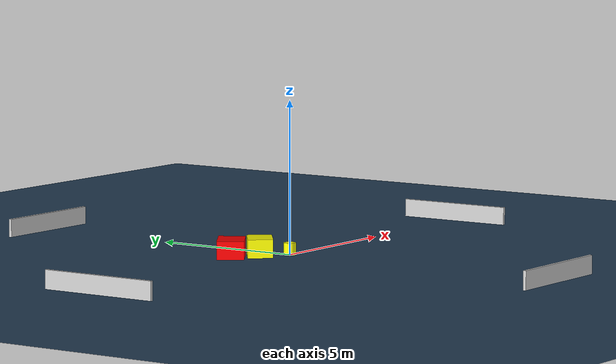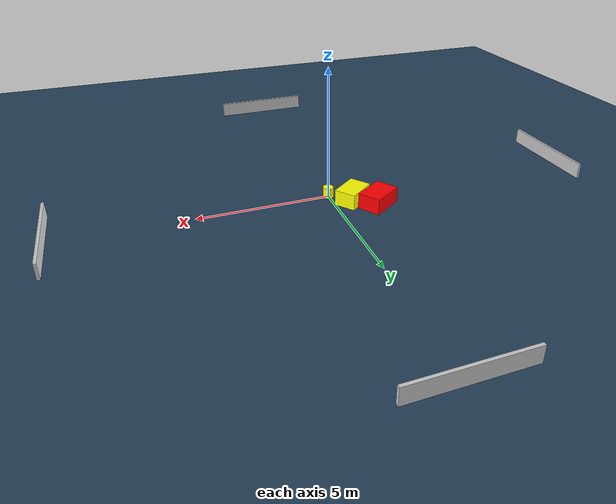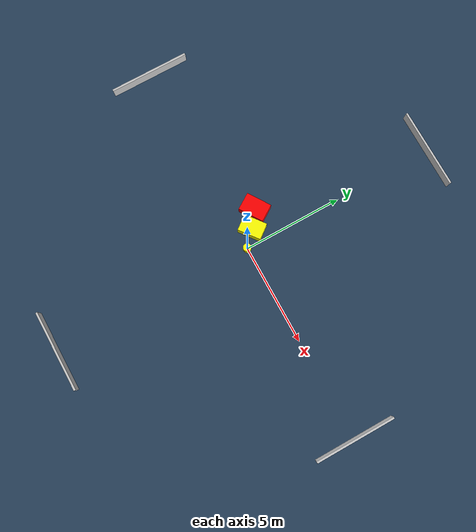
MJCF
<?xml version="1.0" ?>
<mujoco model="generated_environment">
  <option timestep="0.01" integrator="RK4" cone="elliptic"/>
  <default>
    <geom density="1"/>
  </default>
  <asset>
    <texture builtin="gradient" height="3072" name="skybox" rgb1="0.3 0.5 0.7" rgb2="0 0 0" type="skybox" width="512"/>
    <texture builtin="checker" height="300" name="groundplane" rgb1="0.2 0.3 0.4" rgb2="0.1 0.2 0.3" type="2d" width="300"/>
    <material name="groundplane" reflectance="0.2" texrepeat="5 5" texture="groundplane"/>
  </asset>
  <worldbody>
    <light dir="0 0 -1" directional="true" pos="0 0 1.5"/>
    <geom condim="3" friction="0.5 0.005 0.001" material="groundplane" name="floor" pos="0 0 0" size="0 0 0.05" type="plane"/>
    <body name="walls">
      <geom name="wall_1" condim="4" pos="-10.0 0.0 0.3" rgba="0.800000011920929 0.800000011920929 0.800000011920929 1.0" size="0.05 2.0 0.3" type="box"/>
      <geom name="wall_2" condim="4" pos="10.0 0.0 0.3" rgba="0.800000011920929 0.800000011920929 0.800000011920929 1.0" size="0.05 2.0 0.3" type="box"/>
      <geom name="wall_3" condim="4" pos="0.0 -10.0 0.3" rgba="0.800000011920929 0.800000011920929 0.800000011920929 1.0" size="2.0 0.05 0.3" type="box"/>
      <geom name="wall_4" condim="4" pos="0.0 10.0 0.3" rgba="0.800000011920929 0.800000011920929 0.800000011920929 1.0" size="2.0 0.05 0.3" type="box"/>
    </body>
    <body name="robot">
      <joint name="joint_x" type="slide" pos="0 0 0" axis="1 0 0"/>
      <joint name="joint_y" type="slide" pos="0 0 0" axis="0 1 0"/>
      <geom name="robot" type="cylinder" pos="0.0 0.0 0.2" size="0.2 0.2 0.0" mass="5.0" friction="1.0 0.005 0.0001" condim="4" rgba="1.0 1.0 0.0 1.0"/>
    </body>
    <body name="obstacle_1_movable">
      <geom name="obstacle_1_movable" condim="4" pos="-0.7167363323430631 0.6749376720112384 0.3" euler="0 0 127.54603485812015" friction="0.0 0.005 0.001" rgba="1.0 1.0 0.0 1.0" size="0.40951887321121305 0.5769172912346467 0.3" type="box" mass="0.1"/>
      <joint type="free"/>
    </body>
    <body name="obstacle_2_static">
      <geom name="obstacle_2_static" condim="4" pos="-1.496551667039798 1.246569942937702 0.3" euler="0 0 213.10782113397983" friction="0.0 0.005 0.001" rgba="1.0 0.0 0.0 1.0" size="0.6345547019254302 0.44105778642565785 0.3" type="box"/>
    </body>
  </worldbody>
  <actuator>
    <motor name="actuator_x" joint="joint_x" gear="1" ctrlrange="-1 1"/>
    <motor name="actuator_y" joint="joint_y" gear="1" ctrlrange="-1 1"/>
  </actuator>
</mujoco>
